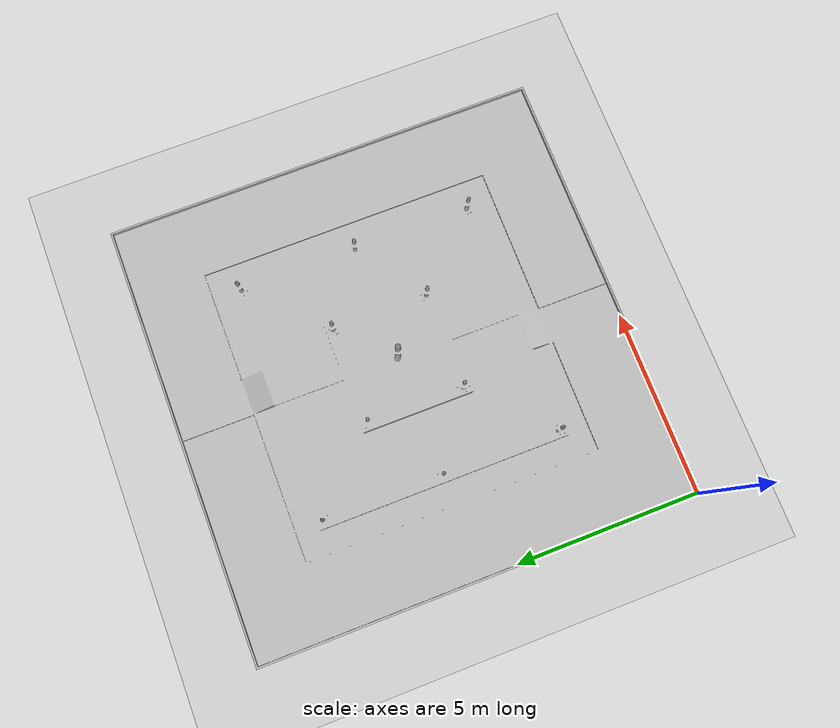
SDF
<?xml version="1.0"?>

<sdf version="1.6">
    <world name="default">
        <!--地面を導入する-->
        <include>
            <uri>model://ground_plane</uri>
        </include>
        <!--ライティングを導入する-->
        <include>
            <uri>model://sun</uri>
        </include>
        <model name="field">
            <pose>0 0 0  0 0 0</pose>
            <static>true</static>
            <link name="body">
                <collision name="collision">
                <geometry>
                    <mesh><uri>file://field.stl</uri></mesh>
                </geometry>
                </collision>
                <visual name="visual">
                <geometry>
                    <mesh><uri>file://field.stl</uri></mesh>
                </geometry>
                </visual>
            </link>
        </model>

    </world>
</sdf>
